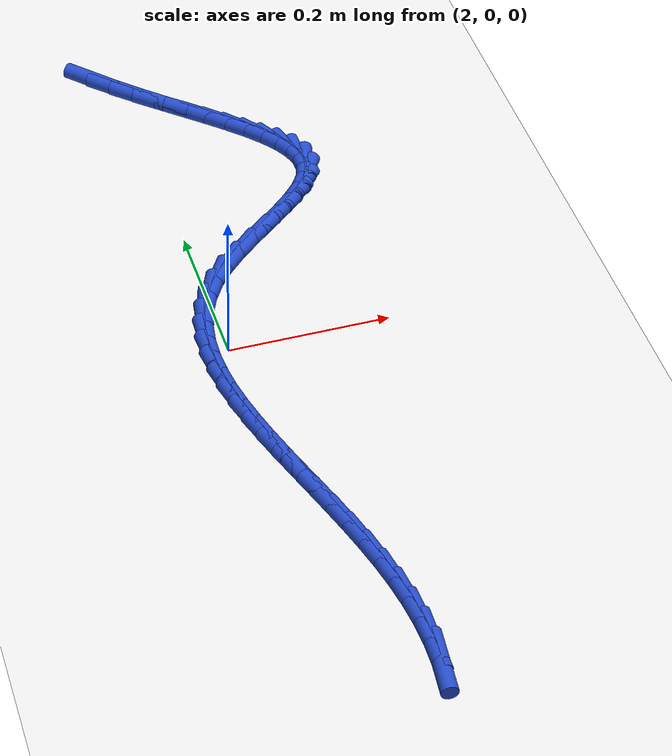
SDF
<sdf version="1.6">
 <world name="default">
  <model name="ground_plane">
   <static>1</static>
   <link name="link">
    <collision name="collision">
     <geometry><plane><normal>0 0 1</normal><size>100 100</size></plane></geometry>
     <surface><friction><ode><mu>100</mu><mu2>50</mu2></ode></friction></surface>
    </collision>
    <visual name="visual">
     <cast_shadows>0</cast_shadows>
     <geometry><plane><normal>0 0 1</normal><size>100 100</size></plane></geometry>
     <material>
      <script><uri>file://media/materials/scripts/gazebo.material</uri><name>Gazebo/WhiteGlow</name></script>
     </material>
    </visual>
   </link>
  </model>
  <model name="line">
   <link name="link_108">
    <pose>1.9641186916665587 0.5273091391900316 0.01 0 1.57 -0.8020576560101945</pose>
    <collision name="collision">
     <geometry><cylinder><radius>0.01</radius><length>0.08</length></cylinder></geometry>
    </collision>
    <visual name="visual">
     <material>
      <script><name>Gazebo/Blue</name><uri>file://media/materials/scripts/gazebo.material</uri></script>
     </material>
     <geometry><cylinder><radius>0.01</radius><length>0.08</length></cylinder></geometry>
    </visual>
   </link>
   <link name="link_109">
    <pose>1.9885562820791975 0.5020434405891367 0.01 0 1.57 -0.760791631833315</pose>
    <collision name="collision">
     <geometry><cylinder><radius>0.01</radius><length>0.08</length></cylinder></geometry>
    </collision>
    <visual name="visual">
     <material>
      <script><name>Gazebo/Blue</name><uri>file://media/materials/scripts/gazebo.material</uri></script>
     </material>
     <geometry><cylinder><radius>0.01</radius><length>0.08</length></cylinder></geometry>
    </visual>
   </link>
   <link name="link_110">
    <pose>2.0138693086832054 0.4779464681293048 0.01 0 1.57 -0.7331124548180075</pose>
    <collision name="collision">
     <geometry><cylinder><radius>0.01</radius><length>0.08</length></cylinder></geometry>
    </collision>
    <visual name="visual">
     <material>
      <script><name>Gazebo/Blue</name><uri>file://media/materials/scripts/gazebo.material</uri></script>
     </material>
     <geometry><cylinder><radius>0.01</radius><length>0.08</length></cylinder></geometry>
    </visual>
   </link>
   <link name="link_111">
    <pose>2.039441392089984 0.45491782625344956 0.01 0 1.57 -0.7187803820431823</pose>
    <collision name="collision">
     <geometry><cylinder><radius>0.01</radius><length>0.08</length></cylinder></geometry>
    </collision>
    <visual name="visual">
     <material>
      <script><name>Gazebo/Blue</name><uri>file://media/materials/scripts/gazebo.material</uri></script>
     </material>
     <geometry><cylinder><radius>0.01</radius><length>0.08</length></cylinder></geometry>
    </visual>
   </link>
   <link name="link_112">
    <pose>2.06465615291094 0.43285711940448374 0.01 0 1.57 -0.7184149224402779</pose>
    <collision name="collision">
     <geometry><cylinder><radius>0.01</radius><length>0.08</length></cylinder></geometry>
    </collision>
    <visual name="visual">
     <material>
      <script><name>Gazebo/Blue</name><uri>file://media/materials/scripts/gazebo.material</uri></script>
     </material>
     <geometry><cylinder><radius>0.01</radius><length>0.08</length></cylinder></geometry>
    </visual>
   </link>
   <link name="link_113">
    <pose>2.0888972117574767 0.4116639520253202 0.01 0 1.57 -0.7337933960917772</pose>
    <collision name="collision">
     <geometry><cylinder><radius>0.01</radius><length>0.08</length></cylinder></geometry>
    </collision>
    <visual name="visual">
     <material>
      <script><name>Gazebo/Blue</name><uri>file://media/materials/scripts/gazebo.material</uri></script>
     </material>
     <geometry><cylinder><radius>0.01</radius><length>0.08</length></cylinder></geometry>
    </visual>
   </link>
   <link name="link_114">
    <pose>2.1115481892409966 0.39123792855887174 0.01 0 1.57 -0.7683556097998319</pose>
    <collision name="collision">
     <geometry><cylinder><radius>0.01</radius><length>0.08</length></cylinder></geometry>
    </collision>
    <visual name="visual">
     <material>
      <script><name>Gazebo/Blue</name><uri>file://media/materials/scripts/gazebo.material</uri></script>
     </material>
     <geometry><cylinder><radius>0.01</radius><length>0.08</length></cylinder></geometry>
    </visual>
   </link>
   <link name="link_115">
    <pose>2.1319927059729062 0.3714786534480513 0.01 0 1.57 -0.8280522397467339</pose>
    <collision name="collision">
     <geometry><cylinder><radius>0.01</radius><length>0.08</length></cylinder></geometry>
    </collision>
    <visual name="visual">
     <material>
      <script><name>Gazebo/Blue</name><uri>file://media/materials/scripts/gazebo.material</uri></script>
     </material>
     <geometry><cylinder><radius>0.01</radius><length>0.08</length></cylinder></geometry>
    </visual>
   </link>
   <link name="link_116">
    <pose>2.149614382564607 0.35228573113577216 0.01 0 1.57 -0.9226217008182985</pose>
    <collision name="collision">
     <geometry><cylinder><radius>0.01</radius><length>0.08</length></cylinder></geometry>
    </collision>
    <visual name="visual">
     <material>
      <script><name>Gazebo/Blue</name><uri>file://media/materials/scripts/gazebo.material</uri></script>
     </material>
     <geometry><cylinder><radius>0.01</radius><length>0.08</length></cylinder></geometry>
    </visual>
   </link>
   <link name="link_117">
    <pose>2.1637968396275045 0.33355876606494705 0.01 0 1.57 -1.0667794890133473</pose>
    <collision name="collision">
     <geometry><cylinder><radius>0.01</radius><length>0.08</length></cylinder></geometry>
    </collision>
    <visual name="visual">
     <material>
      <script><name>Gazebo/Blue</name><uri>file://media/materials/scripts/gazebo.material</uri></script>
     </material>
     <geometry><cylinder><radius>0.01</radius><length>0.08</length></cylinder></geometry>
    </visual>
   </link>
   <link name="link_118">
    <pose>2.1739236977730023 0.31519736267848875 0.01 0 1.57 -1.2780214843514088</pose>
    <collision name="collision">
     <geometry><cylinder><radius>0.01</radius><length>0.08</length></cylinder></geometry>
    </collision>
    <visual name="visual">
     <material>
      <script><name>Gazebo/Blue</name><uri>file://media/materials/scripts/gazebo.material</uri></script>
     </material>
     <geometry><cylinder><radius>0.01</radius><length>0.08</length></cylinder></geometry>
    </visual>
   </link>
   <link name="link_119">
    <pose>2.1793785776125043 0.2971011254193107 0.01 0 1.57 -1.5615100056562001</pose>
    <collision name="collision">
     <geometry><cylinder><radius>0.01</radius><length>0.08</length></cylinder></geometry>
    </collision>
    <visual name="visual">
     <material>
      <script><name>Gazebo/Blue</name><uri>file://media/materials/scripts/gazebo.material</uri></script>
     </material>
     <geometry><cylinder><radius>0.01</radius><length>0.08</length></cylinder></geometry>
    </visual>
   </link>
   <link name="link_120">
    <pose>2.179545099757415 0.27916965873032556 0.01 0 1.57 1.2600435423151157</pose>
    <collision name="collision">
     <geometry><cylinder><radius>0.01</radius><length>0.08</length></cylinder></geometry>
    </collision>
    <visual name="visual">
     <material>
      <script><name>Gazebo/Blue</name><uri>file://media/materials/scripts/gazebo.material</uri></script>
     </material>
     <geometry><cylinder><radius>0.01</radius><length>0.08</length></cylinder></geometry>
    </visual>
   </link>
   <link name="link_121">
    <pose>2.1738069448552246 0.2613025662889402 0.01 0 1.57 0.985471121109225</pose>
    <collision name="collision">
     <geometry><cylinder><radius>0.01</radius><length>0.08</length></cylinder></geometry>
    </collision>
    <visual name="visual">
     <material>
      <script><name>Gazebo/Blue</name><uri>file://media/materials/scripts/gazebo.material</uri></script>
     </material>
     <geometry><cylinder><radius>0.01</radius><length>0.08</length></cylinder></geometry>
    </visual>
   </link>
   <link name="link_122">
    <pose>2.161937357317395 0.24339448453641685 0.01 0 1.57 0.8185140481132903</pose>
    <collision name="collision">
     <geometry><cylinder><radius>0.01</radius><length>0.08</length></cylinder></geometry>
    </collision>
    <visual name="visual">
     <material>
      <script><name>Gazebo/Blue</name><uri>file://media/materials/scripts/gazebo.material</uri></script>
     </material>
     <geometry><cylinder><radius>0.01</radius><length>0.08</length></cylinder></geometry>
    </visual>
   </link>
   <link name="link_123">
    <pose>2.145025081760867 0.22532327627957513 0.01 0 1.57 0.728236346851629</pose>
    <collision name="collision">
     <geometry><cylinder><radius>0.01</radius><length>0.08</length></cylinder></geometry>
    </collision>
    <visual name="visual">
     <material>
      <script><name>Gazebo/Blue</name><uri>file://media/materials/scripts/gazebo.material</uri></script>
     </material>
     <geometry><cylinder><radius>0.01</radius><length>0.08</length></cylinder></geometry>
    </visual>
   </link>
   <link name="link_124">
    <pose>2.1244362587486916 0.20696326731461623 0.01 0 1.57 0.6867423214583974</pose>
    <collision name="collision">
     <geometry><cylinder><radius>0.01</radius><length>0.08</length></cylinder></geometry>
    </collision>
    <visual name="visual">
     <material>
      <script><name>Gazebo/Blue</name><uri>file://media/materials/scripts/gazebo.material</uri></script>
     </material>
     <geometry><cylinder><radius>0.01</radius><length>0.08</length></cylinder></geometry>
    </visual>
   </link>
   <link name="link_125">
    <pose>2.10153702884392 0.18818878343774076 0.01 0 1.57 0.6808443088188773</pose>
    <collision name="collision">
     <geometry><cylinder><radius>0.01</radius><length>0.08</length></cylinder></geometry>
    </collision>
    <visual name="visual">
     <material>
      <script><name>Gazebo/Blue</name><uri>file://media/materials/scripts/gazebo.material</uri></script>
     </material>
     <geometry><cylinder><radius>0.01</radius><length>0.08</length></cylinder></geometry>
    </visual>
   </link>
   <link name="link_126">
    <pose>2.0776935326096013 0.1688741504451493 0.01 0 1.57 0.7062779404298106</pose>
    <collision name="collision">
     <geometry><cylinder><radius>0.01</radius><length>0.08</length></cylinder></geometry>
    </collision>
    <visual name="visual">
     <material>
      <script><name>Gazebo/Blue</name><uri>file://media/materials/scripts/gazebo.material</uri></script>
     </material>
     <geometry><cylinder><radius>0.01</radius><length>0.08</length></cylinder></geometry>
    </visual>
   </link>
   <link name="link_127">
    <pose>2.0542719106087883 0.14889369413304318 0.01 0 1.57 0.7650816107620736</pose>
    <collision name="collision">
     <geometry><cylinder><radius>0.01</radius><length>0.08</length></cylinder></geometry>
    </collision>
    <visual name="visual">
     <material>
      <script><name>Gazebo/Blue</name><uri>file://media/materials/scripts/gazebo.material</uri></script>
     </material>
     <geometry><cylinder><radius>0.01</radius><length>0.08</length></cylinder></geometry>
    </visual>
   </link>
   <link name="link_128">
    <pose>2.032638303404532 0.12812174029762313 0.01 0 1.57 0.8650324419992264</pose>
    <collision name="collision">
     <geometry><cylinder><radius>0.01</radius><length>0.08</length></cylinder></geometry>
    </collision>
    <visual name="visual">
     <material>
      <script><name>Gazebo/Blue</name><uri>file://media/materials/scripts/gazebo.material</uri></script>
     </material>
     <geometry><cylinder><radius>0.01</radius><length>0.08</length></cylinder></geometry>
    </visual>
   </link>
   <link name="link_129">
    <pose>2.0141553880562983 0.10643300496482637 0.01 0 1.57 1.0024474868673727</pose>
    <collision name="collision">
     <geometry><cylinder><radius>0.01</radius><length>0.08</length></cylinder></geometry>
    </collision>
    <visual name="visual">
     <material>
      <script><name>Gazebo/Blue</name><uri>file://media/materials/scripts/gazebo.material</uri></script>
     </material>
     <geometry><cylinder><radius>0.01</radius><length>0.08</length></cylinder></geometry>
    </visual>
   </link>
   <link name="link_130">
    <pose>1.9996752922472183 0.08375972728532467 0.01 0 1.57 1.1463007781542043</pose>
    <collision name="collision">
     <geometry><cylinder><radius>0.01</radius><length>0.08</length></cylinder></geometry>
    </collision>
    <visual name="visual">
     <material>
      <script><name>Gazebo/Blue</name><uri>file://media/materials/scripts/gazebo.material</uri></script>
     </material>
     <geometry><cylinder><radius>0.01</radius><length>0.08</length></cylinder></geometry>
    </visual>
   </link>
   <link name="link_131">
    <pose>1.9890051267654263 0.060151887494170955 0.01 0 1.57 1.2854373595144168</pose>
    <collision name="collision">
     <geometry><cylinder><radius>0.01</radius><length>0.08</length></cylinder></geometry>
    </collision>
    <visual name="visual">
     <material>
      <script><name>Gazebo/Blue</name><uri>file://media/materials/scripts/gazebo.material</uri></script>
     </material>
     <geometry><cylinder><radius>0.01</radius><length>0.08</length></cylinder></geometry>
    </visual>
   </link>
   <link name="link_132">
    <pose>1.9818241239151726 0.035673873776599495 0.01 0 1.57 1.4134062120783517</pose>
    <collision name="collision">
     <geometry><cylinder><radius>0.01</radius><length>0.08</length></cylinder></geometry>
    </collision>
    <visual name="visual">
     <material>
      <script><name>Gazebo/Blue</name><uri>file://media/materials/scripts/gazebo.material</uri></script>
     </material>
     <geometry><cylinder><radius>0.01</radius><length>0.08</length></cylinder></geometry>
    </visual>
   </link>
   <link name="link_133">
    <pose>1.9778115160007053 0.010390074317843875 0.01 0 1.57 1.526062621707264</pose>
    <collision name="collision">
     <geometry><cylinder><radius>0.01</radius><length>0.08</length></cylinder></geometry>
    </collision>
    <visual name="visual">
     <material>
      <script><name>Gazebo/Blue</name><uri>file://media/materials/scripts/gazebo.material</uri></script>
     </material>
     <geometry><cylinder><radius>0.01</radius><length>0.08</length></cylinder></geometry>
    </visual>
   </link>
   <link name="link_134">
    <pose>1.976646535326274 -0.015635122696860123 0.01 0 1.57 -1.5198379967677473</pose>
    <collision name="collision">
     <geometry><cylinder><radius>0.01</radius><length>0.08</length></cylinder></geometry>
    </collision>
    <visual name="visual">
     <material>
      <script><name>Gazebo/Blue</name><uri>file://media/materials/scripts/gazebo.material</uri></script>
     </material>
     <geometry><cylinder><radius>0.01</radius><length>0.08</length></cylinder></geometry>
    </visual>
   </link>
   <link name="link_135">
    <pose>1.9780084141961263 -0.04233732908227887 0.01 0 1.57 -1.4409077895625917</pose>
    <collision name="collision">
     <geometry><cylinder><radius>0.01</radius><length>0.08</length></cylinder></geometry>
    </collision>
    <visual name="visual">
     <material>
      <script><name>Gazebo/Blue</name><uri>file://media/materials/scripts/gazebo.material</uri></script>
     </material>
     <geometry><cylinder><radius>0.01</radius><length>0.08</length></cylinder></geometry>
    </visual>
   </link>
   <link name="link_136">
    <pose>1.9815763849145127 -0.06965215665317809 0.01 0 1.57 -1.3775217078642628</pose>
    <collision name="collision">
     <geometry><cylinder><radius>0.01</radius><length>0.08</length></cylinder></geometry>
    </collision>
    <visual name="visual">
     <material>
      <script><name>Gazebo/Blue</name><uri>file://media/materials/scripts/gazebo.material</uri></script>
     </material>
     <geometry><cylinder><radius>0.01</radius><length>0.08</length></cylinder></geometry>
    </visual>
   </link>
   <link name="link_137">
    <pose>1.9870296797856808 -0.09751521722432341 0.01 0 1.57 -1.3281057622568926</pose>
    <collision name="collision">
     <geometry><cylinder><radius>0.01</radius><length>0.08</length></cylinder></geometry>
    </collision>
    <visual name="visual">
     <material>
      <script><name>Gazebo/Blue</name><uri>file://media/materials/scripts/gazebo.material</uri></script>
     </material>
     <geometry><cylinder><radius>0.01</radius><length>0.08</length></cylinder></geometry>
    </visual>
   </link>
   <link name="link_138">
    <pose>1.9940475311138812 -0.12586212261048058 0.01 0 1.57 -1.2911255199436298</pose>
    <collision name="collision">
     <geometry><cylinder><radius>0.01</radius><length>0.08</length></cylinder></geometry>
    </collision>
    <visual name="visual">
     <material>
      <script><name>Gazebo/Blue</name><uri>file://media/materials/scripts/gazebo.material</uri></script>
     </material>
     <geometry><cylinder><radius>0.01</radius><length>0.08</length></cylinder></geometry>
    </visual>
   </link>
   <link name="link_139">
    <pose>2.0023091712033616 -0.1546284846264152 0.01 0 1.57 -1.265279084796641</pose>
    <collision name="collision">
     <geometry><cylinder><radius>0.01</radius><length>0.08</length></cylinder></geometry>
    </collision>
    <visual name="visual">
     <material>
      <script><name>Gazebo/Blue</name><uri>file://media/materials/scripts/gazebo.material</uri></script>
     </material>
     <geometry><cylinder><radius>0.01</radius><length>0.08</length></cylinder></geometry>
    </visual>
   </link>
   <link name="link_140">
    <pose>2.0114938323583713 -0.18374991508689387 0.01 0 1.57 -1.2495698025896476</pose>
    <collision name="collision">
     <geometry><cylinder><radius>0.01</radius><length>0.08</length></cylinder></geometry>
    </collision>
    <visual name="visual">
     <material>
      <script><name>Gazebo/Blue</name><uri>file://media/materials/scripts/gazebo.material</uri></script>
     </material>
     <geometry><cylinder><radius>0.01</radius><length>0.08</length></cylinder></geometry>
    </visual>
   </link>
   <link name="link_141">
    <pose>2.0212807468831593 -0.2131620258066806 0.01 0 1.57 -1.2433196565705857</pose>
    <collision name="collision">
     <geometry><cylinder><radius>0.01</radius><length>0.08</length></cylinder></geometry>
    </collision>
    <visual name="visual">
     <material>
      <script><name>Gazebo/Blue</name><uri>file://media/materials/scripts/gazebo.material</uri></script>
     </material>
     <geometry><cylinder><radius>0.01</radius><length>0.08</length></cylinder></geometry>
    </visual>
   </link>
   <link name="link_142">
    <pose>2.0313491470819742 -0.24280042860054174 0.01 0 1.57 -1.24615884751877</pose>
    <collision name="collision">
     <geometry><cylinder><radius>0.01</radius><length>0.08</length></cylinder></geometry>
    </collision>
    <visual name="visual">
     <material>
      <script><name>Gazebo/Blue</name><uri>file://media/materials/scripts/gazebo.material</uri></script>
     </material>
     <geometry><cylinder><radius>0.01</radius><length>0.08</length></cylinder></geometry>
    </visual>
   </link>
   <link name="link_143">
    <pose>2.0413782652590653 -0.2726007352832431 0.01 0 1.57 -1.2580088403400727</pose>
    <collision name="collision">
     <geometry><cylinder><radius>0.01</radius><length>0.08</length></cylinder></geometry>
    </collision>
    <visual name="visual">
     <material>
      <script><name>Gazebo/Blue</name><uri>file://media/materials/scripts/gazebo.material</uri></script>
     </material>
     <geometry><cylinder><radius>0.01</radius><length>0.08</length></cylinder></geometry>
    </visual>
   </link>
   <link name="link_144">
    <pose>2.0510473337186816 -0.30249855766955036 0.01 0 1.57 -1.2790647305298672</pose>
    <collision name="collision">
     <geometry><cylinder><radius>0.01</radius><length>0.08</length></cylinder></geometry>
    </collision>
    <visual name="visual">
     <material>
      <script><name>Gazebo/Blue</name><uri>file://media/materials/scripts/gazebo.material</uri></script>
     </material>
     <geometry><cylinder><radius>0.01</radius><length>0.08</length></cylinder></geometry>
    </visual>
   </link>
   <link name="link_145">
    <pose>2.0600355847650715 -0.3324295075742291 0.01 0 1.57 -1.3097750872007683</pose>
    <collision name="collision">
     <geometry><cylinder><radius>0.01</radius><length>0.08</length></cylinder></geometry>
    </collision>
    <visual name="visual">
     <material>
      <script><name>Gazebo/Blue</name><uri>file://media/materials/scripts/gazebo.material</uri></script>
     </material>
     <geometry><cylinder><radius>0.01</radius><length>0.08</length></cylinder></geometry>
    </visual>
   </link>
   <link name="link_146">
    <pose>2.0680222507024855 -0.3623291968120453 0.01 0 1.57 -1.3507529048817497</pose>
    <collision name="collision">
     <geometry><cylinder><radius>0.01</radius><length>0.08</length></cylinder></geometry>
    </collision>
    <visual name="visual">
     <material>
      <script><name>Gazebo/Blue</name><uri>file://media/materials/scripts/gazebo.material</uri></script>
     </material>
     <geometry><cylinder><radius>0.01</radius><length>0.08</length></cylinder></geometry>
    </visual>
   </link>
   <link name="link_147">
    <pose>2.07468817534445 -0.39213235863217066 0.01 0 1.57 -1.400630050211237</pose>
    <collision name="collision">
     <geometry><cylinder><radius>0.01</radius><length>0.08</length></cylinder></geometry>
    </collision>
    <visual name="visual">
     <material>
      <script><name>Gazebo/Blue</name><uri>file://media/materials/scripts/gazebo.material</uri></script>
     </material>
     <geometry><cylinder><radius>0.01</radius><length>0.08</length></cylinder></geometry>
    </visual>
   </link>
   <link name="link_148">
    <pose>2.079775637300382 -0.4217402331487452 0.01 0 1.57 -1.4575045742599166</pose>
    <collision name="collision">
     <geometry><cylinder><radius>0.01</radius><length>0.08</length></cylinder></geometry>
    </collision>
    <visual name="visual">
     <material>
      <script><name>Gazebo/Blue</name><uri>file://media/materials/scripts/gazebo.material</uri></script>
     </material>
     <geometry><cylinder><radius>0.01</radius><length>0.08</length></cylinder></geometry>
    </visual>
   </link>
   <link name="link_149">
    <pose>2.0831060266303525 -0.45101093034971085 0.01 0 1.57 -1.5222071714210905</pose>
    <collision name="collision">
     <geometry><cylinder><radius>0.01</radius><length>0.08</length></cylinder></geometry>
    </collision>
    <visual name="visual">
     <material>
      <script><name>Gazebo/Blue</name><uri>file://media/materials/scripts/gazebo.material</uri></script>
     </material>
     <geometry><cylinder><radius>0.01</radius><length>0.08</length></cylinder></geometry>
    </visual>
   </link>
   <link name="link_150">
    <pose>2.084505951257203 -0.4797997155389865 0.01 0 1.57 1.5458058379928434</pose>
    <collision name="collision">
     <geometry><cylinder><radius>0.01</radius><length>0.08</length></cylinder></geometry>
    </collision>
    <visual name="visual">
     <material>
      <script><name>Gazebo/Blue</name><uri>file://media/materials/scripts/gazebo.material</uri></script>
     </material>
     <geometry><cylinder><radius>0.01</radius><length>0.08</length></cylinder></geometry>
    </visual>
   </link>
   <link name="link_151">
    <pose>2.0838020191037714 -0.5079618540204934 0.01 0 1.57 1.4623841218160318</pose>
    <collision name="collision">
     <geometry><cylinder><radius>0.01</radius><length>0.08</length></cylinder></geometry>
    </collision>
    <visual name="visual">
     <material>
      <script><name>Gazebo/Blue</name><uri>file://media/materials/scripts/gazebo.material</uri></script>
     </material>
     <geometry><cylinder><radius>0.01</radius><length>0.08</length></cylinder></geometry>
    </visual>
   </link>
  </model>
 </world>
</sdf>
